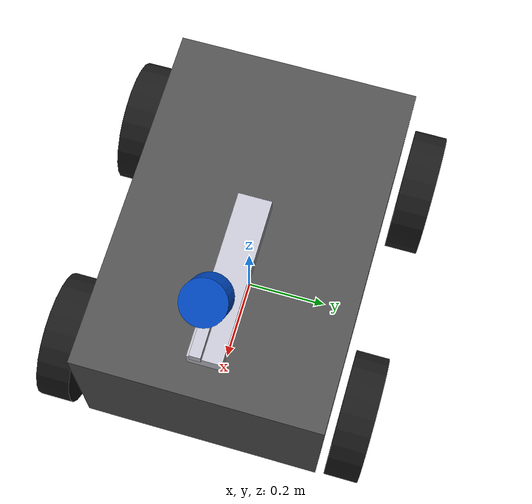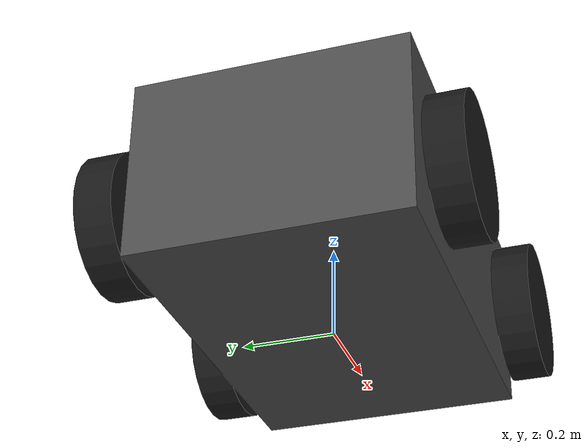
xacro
<?xml version="1.0"?>
<robot name="ranger_mini_sim" xmlns:xacro="http://www.ros.org/wiki/xacro">

  <!-- ========== Constants ========== -->
  <xacro:property name="chassis_length" value="0.85"/>
  <xacro:property name="chassis_width" value="0.58"/>
  <xacro:property name="chassis_height" value="0.40"/>
  <xacro:property name="wheel_radius" value="0.15"/>
  <xacro:property name="wheel_width" value="0.08"/>
  <xacro:property name="wheel_x_offset" value="0.30"/>
  <xacro:property name="wheel_y_offset" value="0.35"/>
  <xacro:property name="wheel_z_offset" value="${wheel_radius}"/>
  <xacro:property name="lidar_x" value="0.30"/>
  <xacro:property name="lidar_y" value="0.0"/>
  <xacro:property name="lidar_z" value="0.70"/>
  <xacro:property name="lidar_roll" value="0.0"/>
  <xacro:property name="lidar_pitch" value="0.523599"/>  <!-- 30 degrees -->
  <xacro:property name="lidar_yaw" value="0.0"/>
  <xacro:property name="camera_x" value="0.35"/>
  <xacro:property name="camera_y" value="0.0"/>
  <xacro:property name="camera_z" value="0.60"/>

  <!-- ========== Materials ========== -->
  <material name="black"><color rgba="0.1 0.1 0.1 1.0"/></material>
  <material name="dark_grey"><color rgba="0.3 0.3 0.3 1.0"/></material>
  <material name="grey"><color rgba="0.5 0.5 0.5 1.0"/></material>
  <material name="orange"><color rgba="1.0 0.5 0.0 1.0"/></material>
  <material name="blue"><color rgba="0.0 0.3 0.8 1.0"/></material>
  <material name="silver"><color rgba="0.75 0.75 0.8 1.0"/></material>

  <!-- ========== Base Footprint ========== -->
  <link name="base_footprint"/>

  <joint name="base_footprint_joint" type="fixed">
    <parent link="base_footprint"/>
    <child link="base_link"/>
    <origin xyz="0 0 0" rpy="0 0 0"/>
  </joint>

  <!-- ========== Chassis (base_link) ========== -->
  <link name="base_link">
    <visual>
      <origin xyz="0 0 ${chassis_height/2}" rpy="0 0 0"/>
      <geometry>
        <box size="${chassis_length} ${chassis_width} ${chassis_height}"/>
      </geometry>
      <material name="dark_grey"/>
    </visual>
    <visual>
      <!-- Top plate / sensor bar -->
      <origin xyz="0.15 0 ${chassis_height + 0.02}" rpy="0 0 0"/>
      <geometry>
        <box size="0.40 0.08 0.04"/>
      </geometry>
      <material name="silver"/>
    </visual>
    <collision>
      <origin xyz="0 0 ${chassis_height/2}" rpy="0 0 0"/>
      <geometry>
        <box size="${chassis_length} ${chassis_width} ${chassis_height}"/>
      </geometry>
    </collision>
    <inertial>
      <mass value="50.0"/>
      <origin xyz="0 0 ${chassis_height/2}" rpy="0 0 0"/>
      <inertia ixx="2.0" ixy="0" ixz="0" iyy="3.0" iyz="0" izz="3.0"/>
    </inertial>
  </link>

  <!-- ========== Wheels ========== -->
  <xacro:macro name="wheel" params="name prefix x y z">
    <link name="${prefix}_${name}_wheel_link">
      <visual>
        <origin xyz="0 0 0" rpy="${pi/2} 0 0"/>
        <geometry>
          <cylinder radius="${wheel_radius}" length="${wheel_width}"/>
        </geometry>
        <material name="black"/>
      </visual>
      <collision>
        <origin xyz="0 0 0" rpy="${pi/2} 0 0"/>
        <geometry>
          <cylinder radius="${wheel_radius}" length="${wheel_width}"/>
        </geometry>
      </collision>
      <inertial>
        <mass value="1.5"/>
        <origin xyz="0 0 0" rpy="0 0 0"/>
        <inertia ixx="0.005" ixy="0" ixz="0" iyy="0.005" iyz="0" izz="0.005"/>
      </inertial>
    </link>

    <joint name="${prefix}_${name}_wheel_joint" type="continuous">
      <parent link="base_link"/>
      <child link="${prefix}_${name}_wheel_link"/>
      <origin xyz="${x} ${y} ${z}" rpy="0 0 0"/>
      <axis xyz="0 1 0"/>
    </joint>
  </xacro:macro>

  <xacro:wheel name="front_left"  prefix="fl" x="${wheel_x_offset}"  y="${wheel_y_offset}"  z="${wheel_z_offset}"/>
  <xacro:wheel name="front_right" prefix="fr" x="${wheel_x_offset}"  y="${-wheel_y_offset}" z="${wheel_z_offset}"/>
  <xacro:wheel name="rear_left"   prefix="rl" x="${-wheel_x_offset}" y="${wheel_y_offset}"  z="${wheel_z_offset}"/>
  <xacro:wheel name="rear_right"  prefix="rr" x="${-wheel_x_offset}" y="${-wheel_y_offset}" z="${wheel_z_offset}"/>

  <!-- ========== Livox MID360S LiDAR Frame ========== -->
  <link name="livox_frame">
    <visual>
      <origin xyz="0 0 0" rpy="0 0 0"/>
      <geometry>
        <cylinder radius="0.05" length="0.08"/>
      </geometry>
      <material name="blue"/>
    </visual>
    <inertial>
      <mass value="0.3"/>
      <origin xyz="0 0 0" rpy="0 0 0"/>
      <inertia ixx="0.0001" ixy="0" ixz="0" iyy="0.0001" iyz="0" izz="0.0001"/>
    </inertial>
  </link>

  <joint name="livox_joint" type="fixed">
    <parent link="base_link"/>
    <child link="livox_frame"/>
    <origin xyz="${lidar_x} ${lidar_y} ${lidar_z}" rpy="${lidar_roll} ${lidar_pitch} ${lidar_yaw}"/>
  </joint>

  <!-- ========== D435i Camera ========== -->
  <link name="camera_link">
    <visual>
      <origin xyz="0 0 0" rpy="0 0 0"/>
      <geometry>
        <box size="0.09 0.025 0.025"/>
      </geometry>
      <material name="silver"/>
    </visual>
    <inertial>
      <mass value="0.1"/>
      <origin xyz="0 0 0" rpy="0 0 0"/>
      <inertia ixx="0.00005" ixy="0" ixz="0" iyy="0.00005" iyz="0" izz="0.00005"/>
    </inertial>
  </link>

  <joint name="camera_joint" type="fixed">
    <parent link="base_link"/>
    <child link="camera_link"/>
    <origin xyz="${camera_x} ${camera_y} ${camera_z}" rpy="0 0 0"/>
  </joint>

  <!-- Camera optical frames — standard ROS convention: z forward, x right, y down -->
  <link name="camera_color_optical_frame"/>
  <joint name="camera_color_optical_joint" type="fixed">
    <parent link="camera_link"/>
    <child link="camera_color_optical_frame"/>
    <origin xyz="0 0 0" rpy="${-pi/2} 0 ${-pi/2}"/>
  </joint>

  <link name="camera_depth_optical_frame"/>
  <joint name="camera_depth_optical_joint" type="fixed">
    <parent link="camera_link"/>
    <child link="camera_depth_optical_frame"/>
    <origin xyz="0 0 0" rpy="${-pi/2} 0 ${-pi/2}"/>
  </joint>

  <!-- ========== IMU ========== -->
  <link name="imu_link">
    <inertial>
      <mass value="0.01"/>
      <origin xyz="0 0 0"/>
      <inertia ixx="1e-6" ixy="0" ixz="0" iyy="1e-6" iyz="0" izz="1e-6"/>
    </inertial>
  </link>

  <joint name="imu_joint" type="fixed">
    <parent link="base_link"/>
    <child link="imu_link"/>
    <origin xyz="0 0 ${chassis_height/2}" rpy="0 0 0"/>
  </joint>

  <!-- ========== Gazebo Plugins ========== -->

  <!-- Diff Drive -->
  <gazebo>
    <plugin name="diff_drive_controller" filename="libgazebo_ros_diff_drive.so">
      <ros>
        <namespace>/</namespace>
        <remapping>cmd_vel:=cmd_vel</remapping>
        <remapping>odom:=odom</remapping>
      </ros>
      <update_rate>50.0</update_rate>
      <left_joint>fl_front_left_wheel_joint</left_joint>
      <left_joint>rl_rear_left_wheel_joint</left_joint>
      <right_joint>fr_front_right_wheel_joint</right_joint>
      <right_joint>rr_rear_right_wheel_joint</right_joint>
      <wheel_separation>${wheel_y_offset * 2}</wheel_separation>
      <wheel_diameter>${wheel_radius * 2}</wheel_diameter>
      <max_wheel_torque>50.0</max_wheel_torque>
      <max_wheel_acceleration>10.0</max_wheel_acceleration>
      <command_topic>cmd_vel</command_topic>
      <odometry_topic>odom</odometry_topic>
      <odometry_frame>odom</odometry_frame>
      <robot_base_frame>base_footprint</robot_base_frame>
      <publish_odom_tf>true</publish_odom_tf>
      <publish_wheel_tf>false</publish_wheel_tf>
      <publish_odom>true</publish_odom>
      <publish_distance>true</publish_distance>
      <odom_topic>odom</odom_topic>
    </plugin>
  </gazebo>

  <!-- MID360S Simulated 3D LiDAR — outputs PointCloud2, NEVER LaserScan -->
  <gazebo reference="livox_frame">
    <sensor name="mid360s_sim" type="ray">
      <pose>0 0 0 0 0 0</pose>
      <visualize>false</visualize>
      <update_rate>10.0</update_rate>
      <ray>
        <scan>
          <horizontal>
            <samples>360</samples>
            <resolution>1.0</resolution>
            <min_angle>-3.14159</min_angle>
            <max_angle>3.14159</max_angle>
          </horizontal>
          <vertical>
            <samples>16</samples>
            <resolution>1.0</resolution>
            <min_angle>-0.35</min_angle>
            <max_angle>0.35</max_angle>
          </vertical>
        </scan>
        <range>
          <min>0.15</min>
          <max>40.0</max>
          <resolution>0.02</resolution>
        </range>
      </ray>
      <plugin name="gazebo_ros_mid360s_controller" filename="libgazebo_ros_ray_sensor.so">
        <ros>
          <namespace>/livox</namespace>
          <remapping>~/out:=lidar</remapping>
        </ros>
        <output_type>sensor_msgs/PointCloud2</output_type>
        <frame_name>livox_frame</frame_name>
      </plugin>
    </sensor>
  </gazebo>

  <!-- D435i RGB Camera on color optical frame -->
  <gazebo reference="camera_link">
    <sensor name="d435i_rgb" type="camera">
      <pose>0 0 0 0 0 0</pose>
      <visualize>false</visualize>
      <update_rate>30.0</update_rate>
      <camera>
        <horizontal_fov>1.089</horizontal_fov>  <!-- ~62.5 deg horizontal for 640px -->
        <image>
          <width>640</width>
          <height>480</height>
          <format>R8G8B8</format>
        </image>
        <clip>
          <near>0.05</near>
          <far>10.0</far>
        </clip>
      </camera>
      <plugin name="d435i_rgb_controller" filename="libgazebo_ros_camera.so">
        <ros>
          <namespace>/camera/color</namespace>
          <remapping>~/image_raw:=image_raw</remapping>
          <remapping>~/camera_info:=camera_info</remapping>
        </ros>
        <frame_name>camera_color_optical_frame</frame_name>
        <update_rate>30.0</update_rate>
        <camera_info_topic>camera_info</camera_info_topic>
      </plugin>
    </sensor>
  </gazebo>

  <!-- D435i Depth Camera — outputs depth image + pointcloud -->
  <gazebo reference="camera_link">
    <sensor name="d435i_depth" type="depth">
      <pose>0 0 0 0 0 0</pose>
      <visualize>false</visualize>
      <update_rate>30.0</update_rate>
      <camera>
        <horizontal_fov>1.089</horizontal_fov>
        <image>
          <width>640</width>
          <height>480</height>
          <format>R8G8B8</format>
        </image>
        <clip>
          <near>0.1</near>
          <far>10.0</far>
        </clip>
      </camera>
      <plugin name="d435i_depth_controller" filename="libgazebo_ros_camera.so">
        <ros>
          <namespace>/camera/depth</namespace>
          <remapping>~/image_raw:=image_raw</remapping>
          <remapping>~/camera_info:=camera_info</remapping>
          <remapping>~/points:=color/points</remapping>
        </ros>
        <frame_name>camera_depth_optical_frame</frame_name>
        <update_rate>30.0</update_rate>
        <camera_info_topic>camera_info</camera_info_topic>
        <hack_baseline>0.05</hack_baseline>
      </plugin>
    </sensor>
  </gazebo>

  <!-- IMU -->
  <gazebo reference="imu_link">
    <sensor name="imu" type="imu">
      <pose>0 0 0 0 0 0</pose>
      <update_rate>100.0</update_rate>
      <plugin name="imu_controller" filename="libgazebo_ros_imu_sensor.so">
        <ros>
          <namespace>/</namespace>
          <remapping>~/out:=imu</remapping>
        </ros>
        <frame_name>imu_link</frame_name>
      </plugin>
    </sensor>
  </gazebo>

  <!-- Joint state publisher plugin -->
  <gazebo>
    <plugin name="joint_state_publisher" filename="libgazebo_ros_joint_state_publisher.so">
      <ros>
        <namespace>/</namespace>
        <remapping>~/out:=joint_states</remapping>
      </ros>
      <update_rate>50.0</update_rate>
      <joint_name>fl_front_left_wheel_joint</joint_name>
      <joint_name>fr_front_right_wheel_joint</joint_name>
      <joint_name>rl_rear_left_wheel_joint</joint_name>
      <joint_name>rr_rear_right_wheel_joint</joint_name>
    </plugin>
  </gazebo>

</robot>
